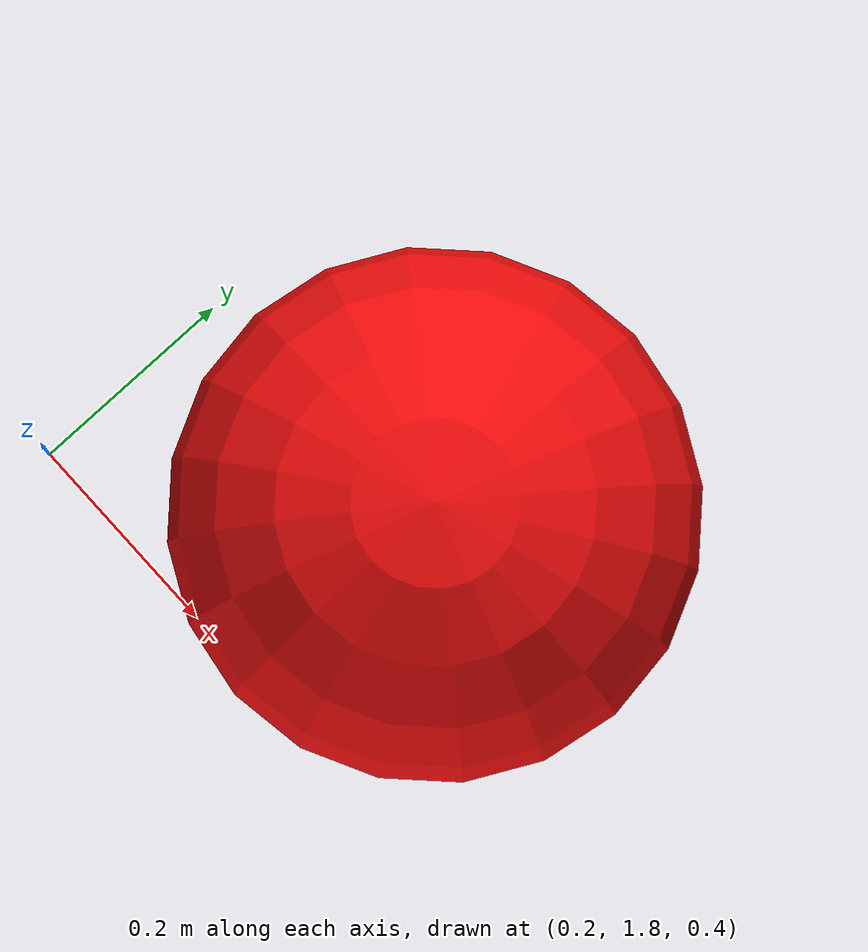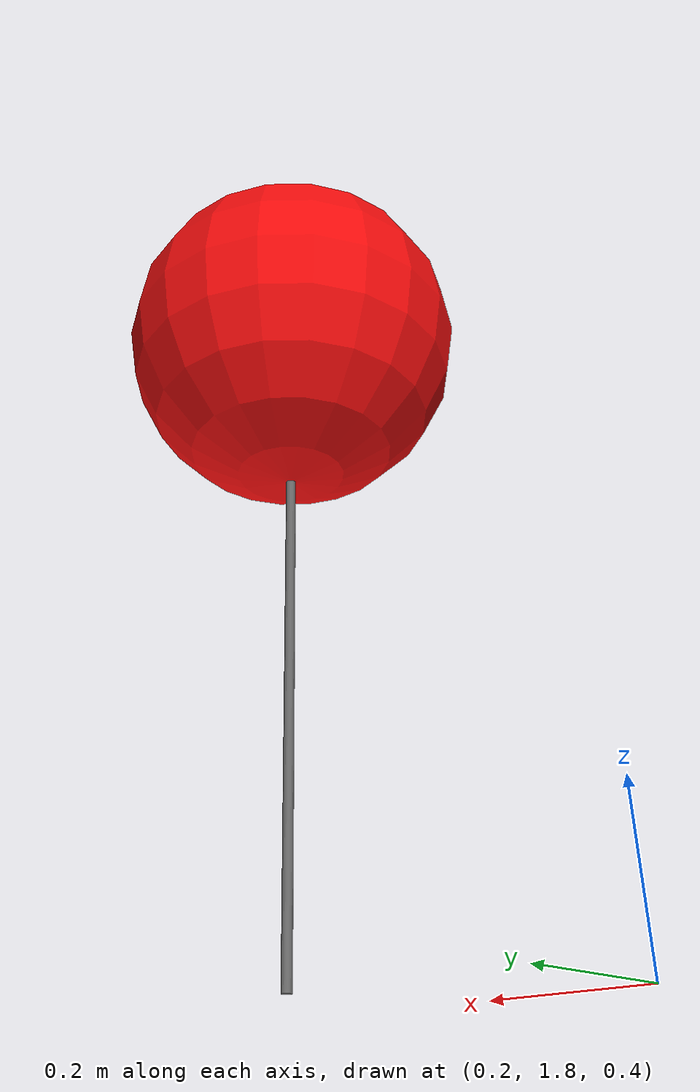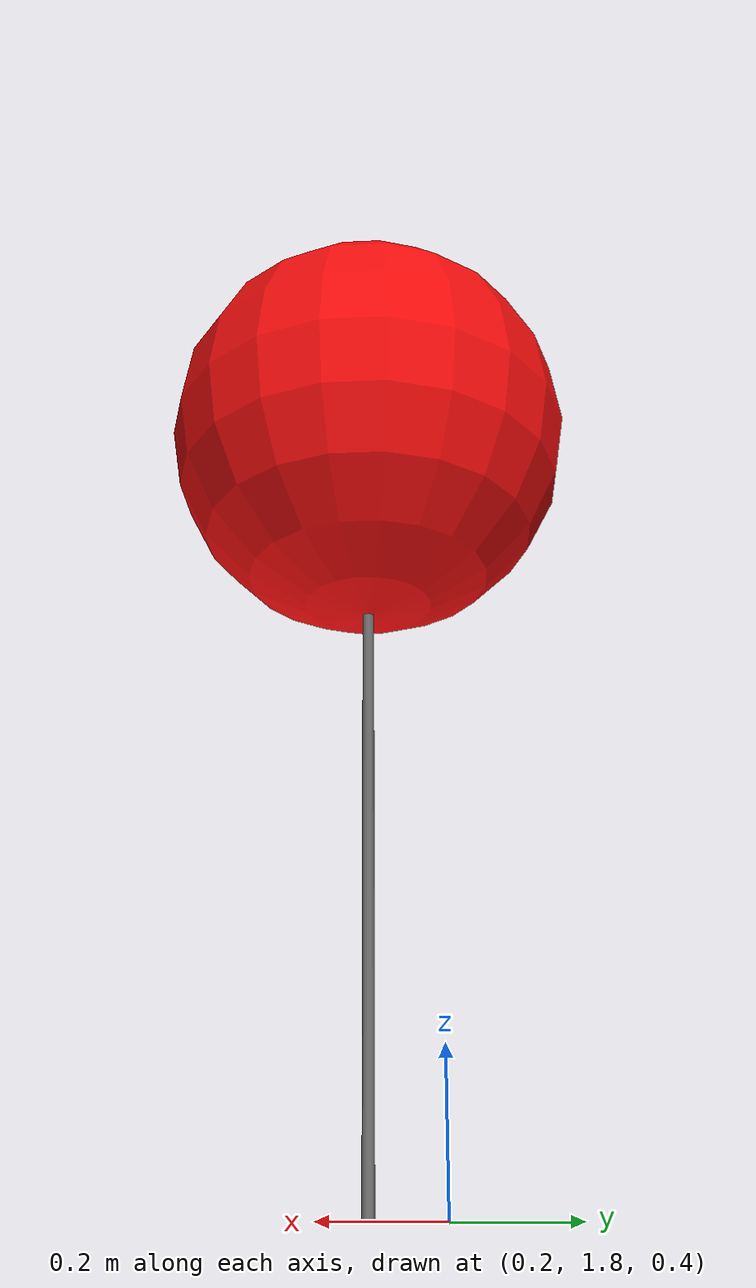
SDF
<sdf version="1.9">
  <model name="red_balloon">
    <!-- World pose: x y z roll pitch yaw -->
    <pose>0.5 2.0 1.0 0 0 0</pose>

    <!-- Keep it static so it doesn't move -->
    <static>true</static>

    <link name="balloon_link">
      <!-- Inertial (mostly irrelevant for static=true, but kept valid) -->
      <inertial>
        <mass>0.06</mass>
        <inertia>
          <ixx>1.5e-4</ixx><iyy>1.5e-4</iyy><izz>1.5e-4</izz>
          <ixy>0</ixy><ixz>0</ixz><iyz>0</iyz>
        </inertia>
      </inertial>

      <!-- Balloon collision (sphere) -->
      <collision name="balloon_collision">
        <!-- Center of balloon above the string attachment -->
        <pose>0 0 0.22 0 0 0</pose>
        <geometry>
          <sphere>
            <radius>0.22</radius> <!-- 22 cm radius balloon -->
          </sphere>
        </geometry>
      </collision>

      <!-- Main balloon visual: bright, saturated, evenly lit red -->
      <visual name="balloon_visual">
        <pose>0 0 0.22 0 0 0</pose>
        <geometry>
          <sphere>
            <radius>0.22</radius>
          </sphere>
        </geometry>
        <material>
          <!-- Moderate ambient, strong diffuse red -->
          <ambient>0.4 0.02 0.02 1</ambient>
          <diffuse>0.95 0.05 0.05 1</diffuse>
          <!-- Strong white specular for glossy look -->
          <specular>0.9 0.9 0.9 1</specular>
          <!-- Slight emissive so it pops even in darker scenes -->
          <emissive>0.2 0.02 0.02 1</emissive>
        </material>
        <!-- Keep it consistently bright (avoid harsh shadows) -->
        <cast_shadows>false</cast_shadows>
        <transparency>0.0</transparency> <!-- fully opaque -->
      </visual>

      <!-- Optional small highlight patch to give YOLO extra edges/features -->
      <visual name="balloon_highlight">
        <!-- Slightly offset on the “front” side -->
        <pose>0.12 0.05 0.28 0 0 0</pose>
        <geometry>
          <sphere>
            <radius>0.06</radius>
          </sphere>
        </geometry>
        <material>
          <ambient>1.0 0.9 0.9 1</ambient>
          <diffuse>1.0 0.9 0.9 1</diffuse>
          <specular>1.0 1.0 1.0 1</specular>
          <emissive>0.5 0.4 0.4 1</emissive>
        </material>
        <!-- Semi-transparent highlight -->
        <transparency>0.4</transparency>
        <cast_shadows>false</cast_shadows>
      </visual>

      <!-- String collision (simple thin cylinder) -->
      <collision name="string_collision">
        <!-- Center of string below the balloon -->
        <pose>0 0 -0.3 0 0 0</pose>
        <geometry>
          <cylinder>
            <radius>0.006</radius>   <!-- 6 mm -->
            <length>0.6</length>     <!-- 60 cm -->
          </cylinder>
        </geometry>
      </collision>

      <!-- String visual -->
      <visual name="string_visual">
        <pose>0 0 -0.3 0 0 0</pose>
        <geometry>
          <cylinder>
            <radius>0.006</radius>
            <length>0.6</length>
          </cylinder>
        </geometry>
        <material>
          <ambient>0.2 0.2 0.2 1</ambient>
          <diffuse>0.4 0.4 0.4 1</diffuse>
          <specular>0.6 0.6 0.6 1</specular>
          <emissive>0 0 0 1</emissive>
        </material>
        <cast_shadows>false</cast_shadows>
      </visual>

    </link>
  </model>
</sdf>
